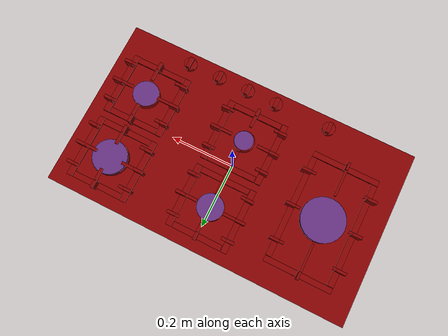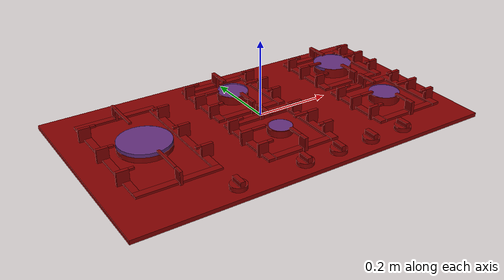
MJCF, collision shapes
<?xml version='1.0' encoding='UTF-8'?>
<mujoco model="model">
  <compiler angle="radian"/>
  <asset>
    <mesh file="visuals/knob_front_center.obj" name="knob_front_center_vis"/>
    <mesh file="visuals/knob_front_right.obj" name="knob_front_right_vis"/>
    <mesh file="visuals/knob_left.obj" name="knob_left_vis"/>
    <mesh file="visuals/knob_rear_center.obj" name="knob_rear_center_vis"/>
    <mesh file="visuals/knob_rear_right.obj" name="knob_rear_right_vis"/>
    <mesh file="visuals/Body001.obj" name="Body001_vis"/>
    <mesh file="visuals/Body002.obj" name="Body002_vis"/>
    <texture file="visuals/T_BC001.png" name="Body001_material" type="2d"/>
    <material name="Body001_material" rgba="1 1 1 1.0" texture="Body001_material" shininess="0.4472135901451111" specular="3"/>
    <texture file="visuals/T_BC001.png" name="knob_front_center_material" type="2d"/>
    <material name="knob_front_center_material" rgba="1 1 1 1.0" texture="knob_front_center_material" shininess="0.4472135901451111" specular="1"/>
    <texture file="visuals/T_BC001.png" name="knob_front_right_material" type="2d"/>
    <material name="knob_front_right_material" rgba="1 1 1 1.0" texture="knob_front_right_material" shininess="0.4472135901451111" specular="1"/>
    <texture file="visuals/T_BC001.png" name="knob_left_material" type="2d"/>
    <material name="knob_left_material" rgba="1 1 1 1.0" texture="knob_left_material" shininess="0.4472135901451111" specular="1"/>
    <texture file="visuals/T_BC001.png" name="knob_rear_center_material" type="2d"/>
    <material name="knob_rear_center_material" rgba="1 1 1 1.0" texture="knob_rear_center_material" shininess="0.4472135901451111" specular="1"/>
    <texture file="visuals/T_BC001.png" name="knob_rear_right_material" type="2d"/>
    <material name="knob_rear_right_material" rgba="1 1 1 1.0" texture="knob_rear_right_material" shininess="0.4472135901451111" specular="1"/>
    <texture file="visuals/T_BC001.png" name="Body002_material" type="2d"/>
    <material name="Body002_material" rgba="1 1 1 1.0" texture="Body002_material" shininess="0.4472135901451111" specular="5"/>
  </asset>
  <default>
    <default class="visual">
      <geom conaffinity="0" contype="0" group="1" type="mesh"/>
    </default>
    <default class="collision">
      <geom group="0" rgba="0.5 0 0 0.5"/>
    </default>
    <default class="spawn">
      <geom group="0" rgba="1 1 1 0.5" contype="0" conaffinity="0"/>
      <site group="0" rgba="1 1 1 0.5"/>
    </default>
    <default class="region">
      <geom group="1" conaffinity="0" contype="0" rgba="0 1 0 0"/>
    </default>
  </default>
  <worldbody>
    <body>
      <body name="object">
        <site type="cylinder" rgba="0.3 0.4 1 0.5" size="0.06843984872102737 0.004636475816369057" pos="-0.308767 0.026324 0.007553" name="burner_on_left"/>
        <site type="cylinder" rgba="0.3 0.4 1 0.5" size="0.04111219197511673 0.004461986944079399" pos="0.002777 0.139358 0.009255" name="burner_on_rear_center"/>
        <site type="cylinder" rgba="0.3 0.4 1 0.5" size="0.05414806306362152 0.00436854362487793" pos="0.339581 0.139237 0.010793" name="burner_on_rear_right"/>
        <site type="cylinder" rgba="0.3 0.4 1 0.5" size="0.04100710526108742 0.004037905018776655" pos="0.339324 -0.084889 0.008373" name="burner_on_front_right"/>
        <site type="cylinder" rgba="0.3 0.4 1 0.5" size="0.030098875984549522 0.0025580639485269785" pos="0.003047 -0.085442 0.006596" name="burner_on_front_center"/>
        <geom mesh="Body001_vis" type="mesh" solimp="0.998 0.998 0.001" solref="0.001 1" density="100" friction="0.95 0.3 0.1" class="visual" material="Body001_material"/>
        <geom class="collision" type="box" pos="-0.000000 -0.000000 -0.017519" size="0.4847741425037384 0.2764391601085663 0.0052696834318339825" quat="1.0 0.0 0.0 0.0"/>
        <body name="knob_front_center">
          <joint axis="0.0 0.0 1.0" pos="-0.033312 -0.237592 0.000003" limited="true" name="knob_front_center_joint" range="0.0 3.6651914291880923" type="hinge" damping="0.05" armature="0.001"/>
          <geom mesh="knob_front_center_vis" type="mesh" solimp="0.998 0.998 0.001" solref="0.001 1" density="100" friction="0.95 0.3 0.1" class="visual" material="knob_front_center_material"/>
          <geom class="collision" type="box" pos="-0.033079 -0.237316 0.006365" size="0.006201376672834158 0.01737280935049057 0.006048974115401506" quat="1.0 0.0 0.0 0.0"/>
          <geom class="collision" type="cylinder" pos="-0.033205 -0.237028 -0.005023" size="0.020895088091492653 0.005719008855521679" quat="1.0 0.0 0.0 0.0"/>
        </body>
        <body name="knob_front_right">
          <joint axis="0.0 0.0 1.0" pos="0.264910 -0.237592 0.000003" limited="true" name="knob_front_right_joint" range="0.0 3.6651914291880923" type="hinge" damping="0.05" armature="0.001"/>
          <geom mesh="knob_front_right_vis" type="mesh" solimp="0.998 0.998 0.001" solref="0.001 1" density="100" friction="0.95 0.3 0.1" class="visual" material="knob_front_right_material"/>
          <geom class="collision" type="box" pos="0.265623 -0.237093 0.006365" size="0.006201376672834158 0.017372816801071167 0.00604897690936923" quat="1.0 0.0 0.0 0.0"/>
          <geom class="collision" type="cylinder" pos="0.265048 -0.237050 -0.005023" size="0.020895088091492653 0.005719008855521679" quat="1.0 0.0 0.0 0.0"/>
        </body>
        <body name="knob_left">
          <joint axis="0.0 0.0 1.0" pos="-0.211954 -0.237592 0.000003" limited="true" name="knob_left_joint" range="0.0 3.6651914291880923" type="hinge" damping="0.05" armature="0.001"/>
          <geom mesh="knob_left_vis" type="mesh" solimp="0.998 0.998 0.001" solref="0.001 1" density="100" friction="0.95 0.3 0.1" class="visual" material="knob_left_material"/>
          <geom class="collision" type="box" pos="-0.211274 -0.237531 0.006365" size="0.006201376672834158 0.01737280748784542 0.006048973184078932" quat="1.0 0.0 0.0 0.0"/>
          <geom class="collision" type="cylinder" pos="-0.211897 -0.237538 -0.005023" size="0.020895088091492653 0.005719008855521679" quat="1.0 0.0 0.0 0.0"/>
        </body>
        <body name="knob_rear_center">
          <joint axis="0.0 0.0 1.0" pos="0.063164 -0.237592 0.000003" limited="true" name="knob_rear_center_joint" range="0.0 3.6651914291880923" type="hinge" damping="0.05" armature="0.001"/>
          <geom mesh="knob_rear_center_vis" type="mesh" solimp="0.998 0.998 0.001" solref="0.001 1" density="100" friction="0.95 0.3 0.1" class="visual" material="knob_rear_center_material"/>
          <geom class="collision" type="box" pos="0.064007 -0.237550 0.006365" size="0.006201376672834158 0.01737281307578087 0.006048975046724081" quat="1.0 0.0 0.0 0.0"/>
          <geom class="collision" type="cylinder" pos="0.063432 -0.237263 -0.005023" size="0.020895088091492653 0.005719008855521679" quat="1.0 0.0 0.0 0.0"/>
        </body>
        <body name="knob_rear_right">
          <joint axis="0.0 0.0 1.0" pos="0.162477 -0.237592 0.000003" limited="true" name="knob_rear_right_joint" range="0.0 3.6651914291880923" type="hinge" damping="0.05" armature="0.001"/>
          <geom mesh="knob_rear_right_vis" type="mesh" solimp="0.998 0.998 0.001" solref="0.001 1" density="100" friction="0.95 0.3 0.1" class="visual" material="knob_rear_right_material"/>
          <geom class="collision" type="box" pos="0.162597 -0.237136 0.006365" size="0.006201376672834158 0.017372814938426018 0.006048975978046656" quat="1.0 0.0 0.0 0.0"/>
          <geom class="collision" type="cylinder" pos="0.162512 -0.236931 -0.005023" size="0.020895088091492653 0.005719008855521679" quat="1.0 0.0 0.0 0.0"/>
        </body>
        <body name="Body002">
          <geom mesh="Body002_vis" type="mesh" solimp="0.998 0.998 0.001" solref="0.001 1" density="100" friction="0.95 0.3 0.1" class="visual" material="Body002_material"/>
          <geom class="collision" type="box" pos="0.428952 -0.086223 -0.007908" size="0.0095110684633255 0.10162597894668579 0.0033622360788285732" quat="1.0 0.0 0.0 0.0"/>
          <geom class="collision" type="box" pos="0.338716 -0.177976 -0.008181" size="0.07949086278676987 0.00928488653153181 0.0030891343485563993" quat="1.0 0.0 0.0 0.0"/>
          <geom class="collision" type="box" pos="0.434292 -0.021141 0.005416" size="0.01307739783078432 0.00466736638918519 0.017370842397212982" quat="1.0 0.0 0.0 0.0"/>
          <geom class="collision" type="box" pos="0.414077 -0.021141 0.020383" size="0.0069289845414459705 0.0046673668548464775 0.002404792932793498" quat="1.0 0.0 0.0 0.0"/>
          <geom class="collision" type="box" pos="0.401573 -0.084886 0.020383" size="0.019432662054896355 0.004667367786169052 0.0024047933984547853" quat="1.0 0.0 0.0 0.0"/>
          <geom class="collision" type="box" pos="0.436753 -0.084886 0.005478" size="0.015538391657173634 0.004667368251830339 0.017309417948126793" quat="1.0 0.0 0.0 0.0"/>
          <geom class="collision" type="box" pos="0.414077 -0.152199 0.020383" size="0.006928988732397556 0.004667369183152914 0.0024047940969467163" quat="1.0 0.0 0.0 0.0"/>
          <geom class="collision" type="box" pos="0.434292 -0.152199 0.005416" size="0.013077412731945515 0.004667369648814201 0.017370857298374176" quat="1.0 0.0 0.0 0.0"/>
          <geom class="collision" type="box" pos="0.340569 -0.179846 0.005478" size="0.004667371977120638 0.012259806506335735 0.01730942726135254" quat="1.0 0.0 0.0 0.0"/>
          <geom class="collision" type="box" pos="0.340569 -0.147945 0.020383" size="0.0046673729084432125 0.01943267695605755 0.0024047952610999346" quat="1.0 0.0 0.0 0.0"/>
          <geom class="collision" type="box" pos="0.340569 -0.024471 0.020383" size="0.0046673733741045 0.019432678818702698 0.0024047954939305782" quat="1.0 0.0 0.0 0.0"/>
          <geom class="collision" type="box" pos="0.340569 0.007429 0.005478" size="0.004667374305427074 0.012259810231626034 0.017309436574578285" quat="1.0 0.0 0.0 0.0"/>
          <geom class="collision" type="box" pos="0.338716 0.005560 -0.008181" size="0.07949098944664001 0.00928490236401558 0.0030891422647982836" quat="1.0 0.0 0.0 0.0"/>
          <geom class="collision" type="box" pos="0.244431 -0.152199 0.005416" size="0.013077430427074432 0.004667374305427074 0.01737087406218052" quat="1.0 0.0 0.0 0.0"/>
          <geom class="collision" type="box" pos="0.264851 -0.152199 0.020383" size="0.006929000373929739 0.004667374771088362 0.002404797123745084" quat="1.0 0.0 0.0 0.0"/>
          <geom class="collision" type="box" pos="0.241970 -0.084886 0.005478" size="0.015538421459496021 0.004667375702410936 0.01730944775044918" quat="1.0 0.0 0.0 0.0"/>
          <geom class="collision" type="box" pos="0.277355 -0.084886 0.020383" size="0.01943269744515419 0.004667376633733511 0.0024047978222370148" quat="1.0 0.0 0.0 0.0"/>
          <geom class="collision" type="box" pos="0.264851 -0.021141 0.020383" size="0.006929005030542612 0.004667377099394798 0.0024047980550676584" quat="1.0 0.0 0.0 0.0"/>
          <geom class="collision" type="box" pos="0.244431 -0.021141 0.005416" size="0.013077445328235626 0.004667378030717373 0.017370888963341713" quat="1.0 0.0 0.0 0.0"/>
          <geom class="collision" type="box" pos="0.247953 -0.086223 -0.007908" size="0.009511095471680164 0.1016264259815216 0.0033622500486671925" quat="1.0 0.0 0.0 0.0"/>
          <geom class="collision" type="cylinder" pos="0.339547 -0.084746 -0.000601" size="0.041390273720026016 0.011315751820802689" quat="1.0 0.0 0.0 0.0"/>
          <geom class="collision" type="box" pos="-0.089664 -0.086223 -0.007908" size="0.009511097334325314 0.1016264483332634 0.0033622507471591234" quat="1.0 0.0 0.0 0.0"/>
          <geom class="collision" type="box" pos="-0.093186 -0.021141 0.005416" size="0.013077453710138798 0.004667379893362522 0.01737089827656746" quat="1.0 0.0 0.0 0.0"/>
          <geom class="collision" type="box" pos="-0.072766 -0.021141 0.020383" size="0.006929012481123209 0.004667380824685097 0.0024047999177128077" quat="1.0 0.0 0.0 0.0"/>
          <geom class="collision" type="box" pos="-0.060262 -0.084886 0.020383" size="0.01943271793425083 0.004667381756007671 0.002404800383374095" quat="1.0 0.0 0.0 0.0"/>
          <geom class="collision" type="box" pos="-0.095647 -0.084886 0.005478" size="0.01553844753652811 0.004667382221668959 0.01730947382748127" quat="1.0 0.0 0.0 0.0"/>
          <geom class="collision" type="box" pos="-0.072766 -0.152199 0.020383" size="0.006929016672074795 0.004667383152991533 0.002404801081866026" quat="1.0 0.0 0.0 0.0"/>
          <geom class="collision" type="box" pos="-0.093186 -0.152199 0.005416" size="0.013077468611299992 0.004667383618652821 0.017370911315083504" quat="1.0 0.0 0.0 0.0"/>
          <geom class="collision" type="box" pos="0.001099 0.005560 -0.008181" size="0.07949116826057434 0.00928492471575737 0.0030891532078385353" quat="1.0 0.0 0.0 0.0"/>
          <geom class="collision" type="box" pos="0.096675 -0.152199 0.005416" size="0.01307747419923544 0.0046673850156366825 0.0173709187656641" quat="1.0 0.0 0.0 0.0"/>
          <geom class="collision" type="box" pos="0.076460 -0.152199 0.020383" size="0.00692902272567153 0.004667385946959257 0.002404802478849888" quat="1.0 0.0 0.0 0.0"/>
          <geom class="collision" type="box" pos="0.003071 0.007429 0.005478" size="0.004667388275265694 0.012259838171303272 0.017309492453932762" quat="1.0 0.0 0.0 0.0"/>
          <geom class="collision" type="box" pos="0.003071 -0.024471 0.020383" size="0.004667388740926981 0.019432740285992622 0.002404803177341819" quat="1.0 0.0 0.0 0.0"/>
          <geom class="collision" type="box" pos="0.099136 -0.084886 0.005478" size="0.015538470819592476 0.004667388275265694 0.01730949804186821" quat="1.0 0.0 0.0 0.0"/>
          <geom class="collision" type="box" pos="0.063956 -0.084886 0.020383" size="0.01943274587392807 0.004667388740926981 0.0024048041086643934" quat="1.0 0.0 0.0 0.0"/>
          <geom class="collision" type="box" pos="0.076460 -0.021141 0.020383" size="0.006929029710590839 0.004667389672249556 0.002404804341495037" quat="1.0 0.0 0.0 0.0"/>
          <geom class="collision" type="box" pos="0.096675 -0.021141 0.005416" size="0.01307749468833208 0.004667390137910843 0.017370939254760742" quat="1.0 0.0 0.0 0.0"/>
          <geom class="collision" type="box" pos="0.002952 -0.147945 0.020383" size="0.0046673924662172794 0.019432755187153816 0.002404805039986968" quat="1.0 0.0 0.0 0.0"/>
          <geom class="collision" type="box" pos="0.002952 -0.179846 0.005478" size="0.004667393397539854 0.012259848415851593 0.017309512943029404" quat="1.0 0.0 0.0 0.0"/>
          <geom class="collision" type="box" pos="0.001099 -0.177976 -0.008181" size="0.07949129492044449 0.009284940548241138 0.003089161356911063" quat="1.0 0.0 0.0 0.0"/>
          <geom class="collision" type="box" pos="0.091335 -0.086223 -0.007908" size="0.009511125274002552 0.10162689536809921 0.0033622647169977427" quat="1.0 0.0 0.0 0.0"/>
          <geom class="collision" type="cylinder" pos="0.001930 -0.084746 -0.000601" size="0.03250832110643387 0.008887501433491707" quat="1.0 0.0 0.0 0.0"/>
          <geom class="collision" type="cylinder" pos="0.339547 0.138557 0.000963" size="0.053853049874305725 0.01332746259868145" quat="1.0 0.0 0.0 0.0"/>
          <geom class="collision" type="cylinder" pos="-0.308801 0.026141 0.000649" size="0.06814379245042801 0.01148492656648159" quat="1.0 0.0 0.0 0.0"/>
          <geom class="collision" type="cylinder" pos="0.002511 0.139389 -0.000601" size="0.041390273720026016 0.011315751820802689" quat="1.0 0.0 0.0 0.0"/>
          <geom class="collision" type="box" pos="0.247270 0.138600 -0.007908" size="0.009511127136647701 0.101626917719841 0.0033622654154896736" quat="1.0 0.0 0.0 0.0"/>
          <geom class="collision" type="box" pos="0.243748 0.203682 0.005416" size="0.013077512383460999 0.004667394794523716 0.017370956018567085" quat="1.0 0.0 0.0 0.0"/>
          <geom class="collision" type="box" pos="0.264168 0.203682 0.020383" size="0.006929041817784309 0.004667395260185003 0.0024048073682934046" quat="1.0 0.0 0.0 0.0"/>
          <geom class="collision" type="box" pos="0.276672 0.139590 0.020383" size="0.019432775676250458 0.004667396191507578 0.0024048076011240482" quat="1.0 0.0 0.0 0.0"/>
          <geom class="collision" type="box" pos="0.241287 0.139590 0.005478" size="0.015538506209850311 0.0046673971228301525 0.017309533432126045" quat="1.0 0.0 0.0 0.0"/>
          <geom class="collision" type="box" pos="0.264168 0.072624 0.020383" size="0.006929046008735895 0.00466739758849144 0.002404808299615979" quat="1.0 0.0 0.0 0.0"/>
          <geom class="collision" type="box" pos="0.243748 0.072624 0.005416" size="0.013077527284622192 0.0046673985198140144 0.01737097091972828" quat="1.0 0.0 0.0 0.0"/>
          <geom class="collision" type="box" pos="0.338033 0.230383 -0.008181" size="0.07949139922857285 0.009284953586757183 0.0030891678761690855" quat="1.0 0.0 0.0 0.0"/>
          <geom class="collision" type="box" pos="0.433609 0.072276 0.005416" size="0.01307753287255764 0.004667399916797876 0.017370976507663727" quat="1.0 0.0 0.0 0.0"/>
          <geom class="collision" type="box" pos="0.413394 0.072276 0.020383" size="0.00692905206233263 0.004667400382459164 0.0024048099294304848" quat="1.0 0.0 0.0 0.0"/>
          <geom class="collision" type="box" pos="0.340075 0.232253 0.005478" size="0.0046674027107656 0.01225986797362566 0.01730955019593239" quat="1.0 0.0 0.0 0.0"/>
          <geom class="collision" type="box" pos="0.340075 0.200352 0.020383" size="0.004667403642088175 0.019432799890637398 0.0024048106279224157" quat="1.0 0.0 0.0 0.0"/>
          <geom class="collision" type="box" pos="0.436070 0.139590 0.005478" size="0.015538529492914677 0.0046674027107656 0.017309555783867836" quat="1.0 0.0 0.0 0.0"/>
          <geom class="collision" type="box" pos="0.400890 0.139590 0.020383" size="0.019432805478572845 0.004667403642088175 0.0024048113264143467" quat="1.0 0.0 0.0 0.0"/>
          <geom class="collision" type="box" pos="0.413394 0.203682 0.020383" size="0.00692905904725194 0.004667404107749462 0.002404811792075634" quat="1.0 0.0 0.0 0.0"/>
          <geom class="collision" type="box" pos="0.433609 0.203682 0.005416" size="0.013077553361654282 0.004667405039072037 0.01737099699676037" quat="1.0 0.0 0.0 0.0"/>
          <geom class="collision" type="box" pos="0.339886 0.076878 0.020383" size="0.004667407367378473 0.01943281479179859 0.002404812490567565" quat="1.0 0.0 0.0 0.0"/>
          <geom class="collision" type="box" pos="0.339886 0.044977 0.005478" size="0.004667407833039761 0.01225987821817398 0.01730957068502903" quat="1.0 0.0 0.0 0.0"/>
          <geom class="collision" type="box" pos="0.338033 0.046496 -0.008181" size="0.079491525888443 0.009284970350563526 0.0030891760252416134" quat="1.0 0.0 0.0 0.0"/>
          <geom class="collision" type="box" pos="0.428269 0.138600 -0.007908" size="0.009511154145002365 0.10162736475467682 0.003362279385328293" quat="1.0 0.0 0.0 0.0"/>
          <geom class="collision" type="box" pos="0.091306 0.139280 -0.007908" size="0.009511156007647514 0.10162738710641861 0.003362280083820224" quat="1.0 0.0 0.0 0.0"/>
          <geom class="collision" type="box" pos="0.001070 0.047527 -0.008181" size="0.07949156314134598 0.009284974075853825 0.0030891781207174063" quat="1.0 0.0 0.0 0.0"/>
          <geom class="collision" type="box" pos="0.002923 0.045657 0.005478" size="0.004667411558330059 0.012259884737432003 0.017309585586190224" quat="1.0 0.0 0.0 0.0"/>
          <geom class="collision" type="box" pos="0.002923 0.077558 0.020383" size="0.004667412489652634 0.019432835280895233 0.002404815051704645" quat="1.0 0.0 0.0 0.0"/>
          <geom class="collision" type="box" pos="0.096646 0.204622 0.005416" size="0.01307757943868637 0.004667411558330059 0.017371023073792458" quat="1.0 0.0 0.0 0.0"/>
          <geom class="collision" type="box" pos="0.076431 0.204622 0.020383" size="0.0069290753453969955 0.004667412489652634 0.002404815750196576" quat="1.0 0.0 0.0 0.0"/>
          <geom class="collision" type="box" pos="0.064080 0.140618 0.020383" size="0.01943284273147583 0.004667412955313921 0.0024048159830272198" quat="1.0 0.0 0.0 0.0"/>
          <geom class="collision" type="box" pos="0.099399 0.140618 0.005478" size="0.015538573265075684 0.004667413886636496 0.017309600487351418" quat="1.0 0.0 0.0 0.0"/>
          <geom class="collision" type="box" pos="0.003103 0.201032 0.020383" size="0.004667416214942932 0.019432848319411278 0.0024048169143497944" quat="1.0 0.0 0.0 0.0"/>
          <geom class="collision" type="box" pos="0.003103 0.232933 0.005478" size="0.0046674166806042194 0.012259894981980324 0.017309606075286865" quat="1.0 0.0 0.0 0.0"/>
          <geom class="collision" type="box" pos="0.076431 0.073304 0.020383" size="0.0069290827959775925 0.004667416214942932 0.0024048176128417253" quat="1.0 0.0 0.0 0.0"/>
          <geom class="collision" type="box" pos="0.096646 0.073304 0.005416" size="0.013077599927783012 0.0046674166806042194 0.0173710435628891" quat="1.0 0.0 0.0 0.0"/>
          <geom class="collision" type="box" pos="0.001070 0.231522 -0.008181" size="0.07949168980121613 0.009284990839660168 0.003089186269789934" quat="1.0 0.0 0.0 0.0"/>
          <geom class="collision" type="box" pos="-0.093215 0.073753 0.005416" size="0.013077606447041035 0.004667418077588081 0.017371049150824547" quat="1.0 0.0 0.0 0.0"/>
          <geom class="collision" type="box" pos="-0.072795 0.073753 0.020383" size="0.00692908838391304 0.004667419008910656 0.0024048190098255873" quat="1.0 0.0 0.0 0.0"/>
          <geom class="collision" type="box" pos="-0.095618 0.140618 0.005478" size="0.015538596548140049 0.004667419474571943 0.01730962283909321" quat="1.0 0.0 0.0 0.0"/>
          <geom class="collision" type="box" pos="-0.060179 0.140618 0.020383" size="0.019432872533798218 0.004667420405894518 0.0024048197083175182" quat="1.0 0.0 0.0 0.0"/>
          <geom class="collision" type="box" pos="-0.072795 0.204498 0.020383" size="0.006929093040525913 0.0046674213372170925 0.0024048201739788055" quat="1.0 0.0 0.0 0.0"/>
          <geom class="collision" type="box" pos="-0.093215 0.204498 0.005416" size="0.013077620416879654 0.00466742180287838 0.01737106405198574" quat="1.0 0.0 0.0 0.0"/>
          <geom class="collision" type="box" pos="-0.089693 0.139280 -0.007908" size="0.009511183947324753 0.10162783414125443 0.003362294053658843" quat="1.0 0.0 0.0 0.0"/>
          <geom class="collision" type="box" pos="-0.309022 0.199184 -0.008530" size="0.10723058879375458 0.008934089913964272 0.002740032970905304" quat="1.0 0.0 0.0 0.0"/>
          <geom class="collision" type="box" pos="-0.309024 0.201950 0.005292" size="0.0036702491343021393 0.012259912677109241 0.017123602330684662" quat="1.0 0.0 0.0 0.0"/>
          <geom class="collision" type="box" pos="-0.309024 0.146637 0.020197" size="0.0036702502984553576 0.04284565523266792 0.002218783600255847" quat="1.0 0.0 0.0 0.0"/>
          <geom class="collision" type="box" pos="-0.309024 -0.092908 0.020197" size="0.0036702509969472885 0.04284566268324852 0.0022187840659171343" quat="1.0 0.0 0.0 0.0"/>
          <geom class="collision" type="box" pos="-0.309024 -0.148826 0.005292" size="0.003670251462608576 0.012259917333722115 0.017123611643910408" quat="1.0 0.0 0.0 0.0"/>
          <geom class="collision" type="box" pos="-0.309022 -0.147420 -0.008530" size="0.10723070800304413 0.008934097364544868 0.002740034833550453" quat="1.0 0.0 0.0 0.0"/>
          <geom class="collision" type="box" pos="-0.226035 0.026931 0.020383" size="0.006795559078454971 0.004085926804691553 0.0024048234336078167" quat="1.0 0.0 0.0 0.0"/>
          <geom class="collision" type="box" pos="-0.204053 0.027064 0.005416" size="0.015184065327048302 0.004425566177815199 0.01737109012901783" quat="1.0 0.0 0.0 0.0"/>
          <geom class="collision" type="box" pos="-0.210624 0.025750 -0.008784" size="0.009199212305247784 0.16356532275676727 0.002486462937667966" quat="1.0 0.0 0.0 0.0"/>
          <geom class="collision" type="box" pos="-0.204053 0.139480 0.005416" size="0.01518407091498375 0.004425567574799061 0.017371095716953278" quat="1.0 0.0 0.0 0.0"/>
          <geom class="collision" type="box" pos="-0.226035 0.139348 0.020383" size="0.006795565132051706 0.004085929598659277 0.0024048248305916786" quat="1.0 0.0 0.0 0.0"/>
          <geom class="collision" type="box" pos="-0.226035 -0.086093 0.020383" size="0.006795566529035568 0.004085930529981852 0.002404825296252966" quat="1.0 0.0 0.0 0.0"/>
          <geom class="collision" type="box" pos="-0.204053 -0.085961 0.005416" size="0.015184080228209496 0.004425569903105497 0.017371105030179024" quat="1.0 0.0 0.0 0.0"/>
          <geom class="collision" type="box" pos="-0.413788 -0.085961 0.005416" size="0.01518408302217722 0.004425570368766785 0.017371108755469322" quat="1.0 0.0 0.0 0.0"/>
          <geom class="collision" type="box" pos="-0.391806 -0.086093 0.020383" size="0.006795570719987154 0.004085932858288288 0.0024048262275755405" quat="1.0 0.0 0.0 0.0"/>
          <geom class="collision" type="box" pos="-0.391806 0.139348 0.020383" size="0.006795572582632303 0.004085933323949575 0.002404826693236828" quat="1.0 0.0 0.0 0.0"/>
          <geom class="collision" type="box" pos="-0.413788 0.139480 0.005416" size="0.015184091404080391 0.004425572697073221 0.01737111620604992" quat="1.0 0.0 0.0 0.0"/>
          <geom class="collision" type="box" pos="-0.407217 0.025750 -0.008784" size="0.009199225343763828 0.163565531373024 0.0024864664301276207" quat="1.0 0.0 0.0 0.0"/>
          <geom class="collision" type="box" pos="-0.413788 0.027064 0.005416" size="0.015184097923338413 0.004425574094057083 0.017371123656630516" quat="1.0 0.0 0.0 0.0"/>
          <geom class="collision" type="box" pos="-0.391806 0.026931 0.020383" size="0.006795578170567751 0.004085936583578587 0.0024048280902206898" quat="1.0 0.0 0.0 0.0"/>
        </body>
        <geom class="region" name="reg_main" type="box" pos="0.0 0.0 -0.0175185" size="0.484774 0.276439 0.0052695"/>
      </body>
    </body>
  </worldbody>
  <actuator>
    <motor name="knob_front_center_joint_actuator" joint="knob_front_center_joint" gear="10"/>
    <motor name="knob_front_right_joint_actuator" joint="knob_front_right_joint" gear="10"/>
    <motor name="knob_left_joint_actuator" joint="knob_left_joint" gear="10"/>
    <motor name="knob_rear_center_joint_actuator" joint="knob_rear_center_joint" gear="10"/>
    <motor name="knob_rear_right_joint_actuator" joint="knob_rear_right_joint" gear="10"/>
  </actuator>
</mujoco>
